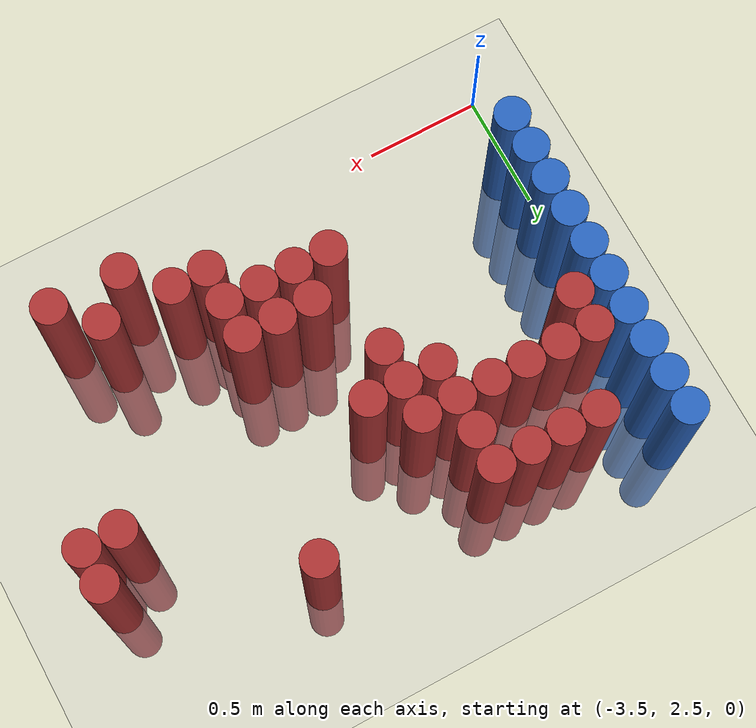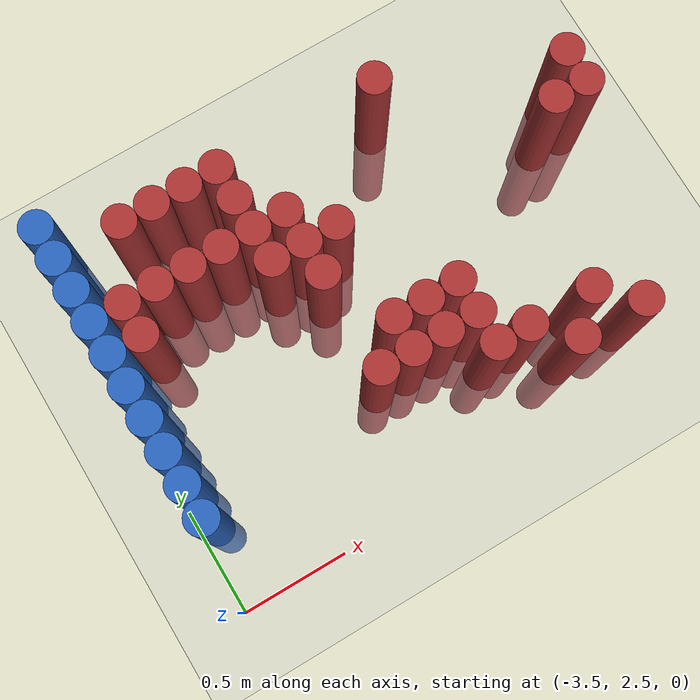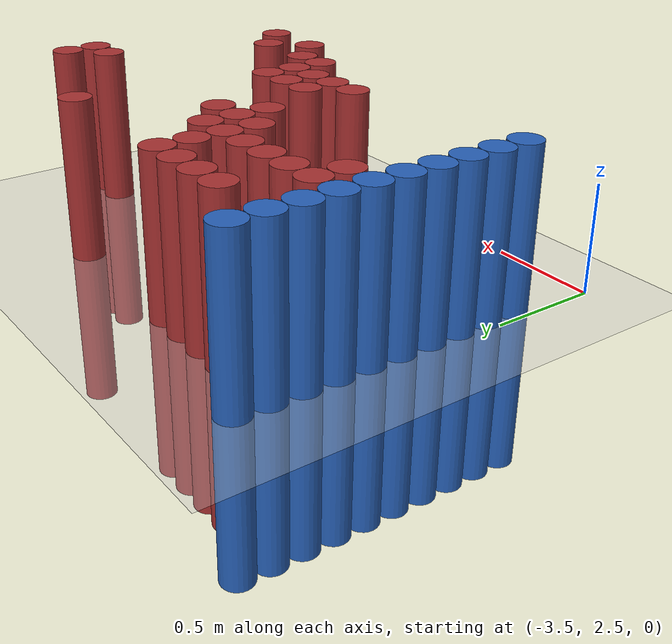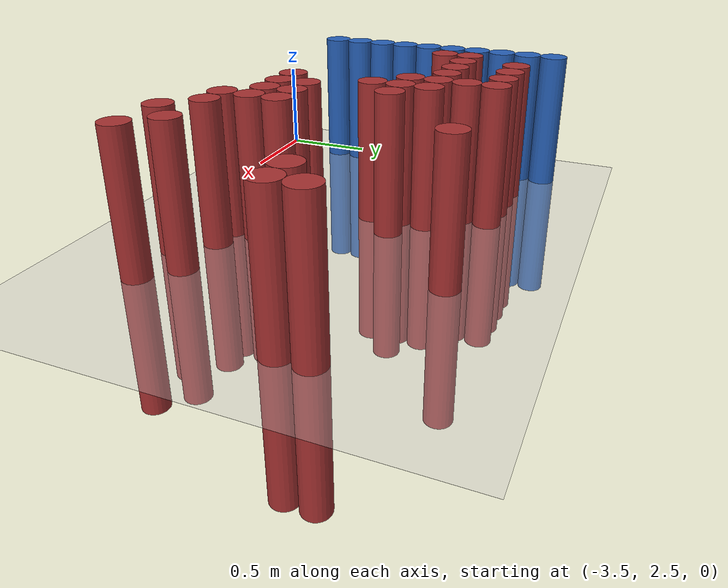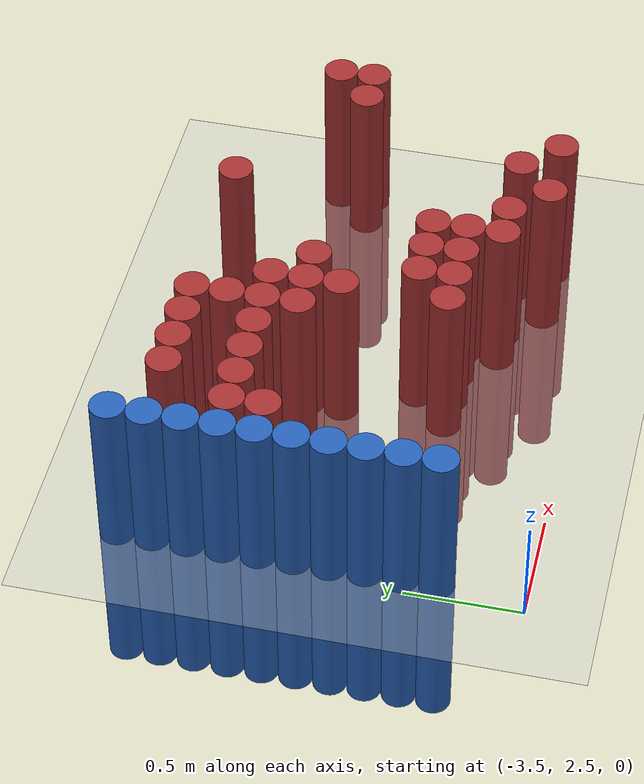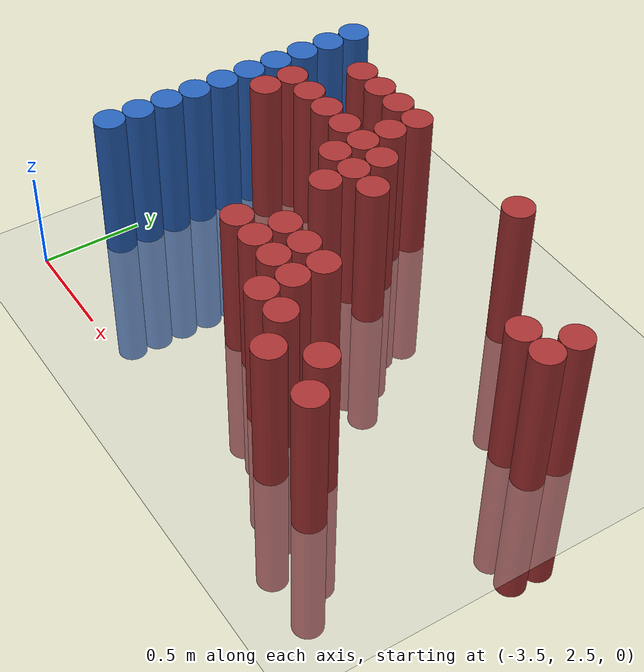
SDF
<sdf version="1.6">
 <world name="default">
  <model name="ground_plane">
   <static>1</static>
   <link name="link">
    <collision name="collision">
     <geometry><plane><normal>0 0 1</normal><size>100 100</size></plane></geometry>
     <surface><friction><ode><mu>100</mu><mu2>50</mu2></ode></friction></surface>
    </collision>
    <visual name="visual">
     <cast_shadows>0</cast_shadows>
     <geometry><plane><normal>0 0 1</normal><size>100 100</size></plane></geometry>
     <material>
      <script><uri>file://media/materials/scripts/gazebo.material</uri><name>Gazebo/Grey</name></script>
     </material>
    </visual>
   </link>
  </model>
  <model name="unit_cylinder_153">
   <static>1</static>
   <pose>-3.425000 2.875000 0.000000 0.000000 0.000000 0.000000</pose>
   <link name="link">
    <inertial>
     <mass>1</mass>
     <inertia><ixx>0.145833</ixx><ixy>0</ixy><ixz>0</ixz><iyy>0.145833</iyy><iyz>0</iyz><izz>0.125</izz></inertia>
    </inertial>
    <collision name="collision">
     <geometry><cylinder><radius>0.075000</radius><length>1.5</length></cylinder></geometry>
    </collision>
    <visual name="visual">
     <geometry><cylinder><radius>0.075000</radius><length>1.5</length></cylinder></geometry>
     <material>
      <ambient>0.152000 0.379000 0.720000 1</ambient>
      <diffuse>0.152000 0.379000 0.720000 1</diffuse>
     </material>
     <material>
      <script><name>Gazebo/Grey</name><uri>file://media/materials/scripts/gazebo.material</uri></script>
     </material>
    </visual>
   </link>
  </model>
  <model name="unit_cylinder_155">
   <static>1</static>
   <pose>-3.425000 3.025000 0.000000 0.000000 0.000000 0.000000</pose>
   <link name="link">
    <inertial>
     <mass>1</mass>
     <inertia><ixx>0.145833</ixx><ixy>0</ixy><ixz>0</ixz><iyy>0.145833</iyy><iyz>0</iyz><izz>0.125</izz></inertia>
    </inertial>
    <collision name="collision">
     <geometry><cylinder><radius>0.075000</radius><length>1.5</length></cylinder></geometry>
    </collision>
    <visual name="visual">
     <geometry><cylinder><radius>0.075000</radius><length>1.5</length></cylinder></geometry>
     <material>
      <ambient>0.152000 0.379000 0.720000 1</ambient>
      <diffuse>0.152000 0.379000 0.720000 1</diffuse>
     </material>
     <material>
      <script><name>Gazebo/Grey</name><uri>file://media/materials/scripts/gazebo.material</uri></script>
     </material>
    </visual>
   </link>
  </model>
  <model name="unit_cylinder_157">
   <static>1</static>
   <pose>-3.425000 3.175000 0.000000 0.000000 0.000000 0.000000</pose>
   <link name="link">
    <inertial>
     <mass>1</mass>
     <inertia><ixx>0.145833</ixx><ixy>0</ixy><ixz>0</ixz><iyy>0.145833</iyy><iyz>0</iyz><izz>0.125</izz></inertia>
    </inertial>
    <collision name="collision">
     <geometry><cylinder><radius>0.075000</radius><length>1.5</length></cylinder></geometry>
    </collision>
    <visual name="visual">
     <geometry><cylinder><radius>0.075000</radius><length>1.5</length></cylinder></geometry>
     <material>
      <ambient>0.152000 0.379000 0.720000 1</ambient>
      <diffuse>0.152000 0.379000 0.720000 1</diffuse>
     </material>
     <material>
      <script><name>Gazebo/Grey</name><uri>file://media/materials/scripts/gazebo.material</uri></script>
     </material>
    </visual>
   </link>
  </model>
  <model name="unit_cylinder_159">
   <static>1</static>
   <pose>-3.425000 3.325000 0.000000 0.000000 0.000000 0.000000</pose>
   <link name="link">
    <inertial>
     <mass>1</mass>
     <inertia><ixx>0.145833</ixx><ixy>0</ixy><ixz>0</ixz><iyy>0.145833</iyy><iyz>0</iyz><izz>0.125</izz></inertia>
    </inertial>
    <collision name="collision">
     <geometry><cylinder><radius>0.075000</radius><length>1.5</length></cylinder></geometry>
    </collision>
    <visual name="visual">
     <geometry><cylinder><radius>0.075000</radius><length>1.5</length></cylinder></geometry>
     <material>
      <ambient>0.152000 0.379000 0.720000 1</ambient>
      <diffuse>0.152000 0.379000 0.720000 1</diffuse>
     </material>
     <material>
      <script><name>Gazebo/Grey</name><uri>file://media/materials/scripts/gazebo.material</uri></script>
     </material>
    </visual>
   </link>
  </model>
  <model name="unit_cylinder_161">
   <static>1</static>
   <pose>-3.425000 3.475000 0.000000 0.000000 0.000000 0.000000</pose>
   <link name="link">
    <inertial>
     <mass>1</mass>
     <inertia><ixx>0.145833</ixx><ixy>0</ixy><ixz>0</ixz><iyy>0.145833</iyy><iyz>0</iyz><izz>0.125</izz></inertia>
    </inertial>
    <collision name="collision">
     <geometry><cylinder><radius>0.075000</radius><length>1.5</length></cylinder></geometry>
    </collision>
    <visual name="visual">
     <geometry><cylinder><radius>0.075000</radius><length>1.5</length></cylinder></geometry>
     <material>
      <ambient>0.152000 0.379000 0.720000 1</ambient>
      <diffuse>0.152000 0.379000 0.720000 1</diffuse>
     </material>
     <material>
      <script><name>Gazebo/Grey</name><uri>file://media/materials/scripts/gazebo.material</uri></script>
     </material>
    </visual>
   </link>
  </model>
  <model name="unit_cylinder_163">
   <static>1</static>
   <pose>-3.425000 3.625000 0.000000 0.000000 0.000000 0.000000</pose>
   <link name="link">
    <inertial>
     <mass>1</mass>
     <inertia><ixx>0.145833</ixx><ixy>0</ixy><ixz>0</ixz><iyy>0.145833</iyy><iyz>0</iyz><izz>0.125</izz></inertia>
    </inertial>
    <collision name="collision">
     <geometry><cylinder><radius>0.075000</radius><length>1.5</length></cylinder></geometry>
    </collision>
    <visual name="visual">
     <geometry><cylinder><radius>0.075000</radius><length>1.5</length></cylinder></geometry>
     <material>
      <ambient>0.152000 0.379000 0.720000 1</ambient>
      <diffuse>0.152000 0.379000 0.720000 1</diffuse>
     </material>
     <material>
      <script><name>Gazebo/Grey</name><uri>file://media/materials/scripts/gazebo.material</uri></script>
     </material>
    </visual>
   </link>
  </model>
  <model name="unit_cylinder_165">
   <static>1</static>
   <pose>-3.425000 3.775000 0.000000 0.000000 0.000000 0.000000</pose>
   <link name="link">
    <inertial>
     <mass>1</mass>
     <inertia><ixx>0.145833</ixx><ixy>0</ixy><ixz>0</ixz><iyy>0.145833</iyy><iyz>0</iyz><izz>0.125</izz></inertia>
    </inertial>
    <collision name="collision">
     <geometry><cylinder><radius>0.075000</radius><length>1.5</length></cylinder></geometry>
    </collision>
    <visual name="visual">
     <geometry><cylinder><radius>0.075000</radius><length>1.5</length></cylinder></geometry>
     <material>
      <ambient>0.152000 0.379000 0.720000 1</ambient>
      <diffuse>0.152000 0.379000 0.720000 1</diffuse>
     </material>
     <material>
      <script><name>Gazebo/Grey</name><uri>file://media/materials/scripts/gazebo.material</uri></script>
     </material>
    </visual>
   </link>
  </model>
  <model name="unit_cylinder_167">
   <static>1</static>
   <pose>-3.425000 3.925000 0.000000 0.000000 0.000000 0.000000</pose>
   <link name="link">
    <inertial>
     <mass>1</mass>
     <inertia><ixx>0.145833</ixx><ixy>0</ixy><ixz>0</ixz><iyy>0.145833</iyy><iyz>0</iyz><izz>0.125</izz></inertia>
    </inertial>
    <collision name="collision">
     <geometry><cylinder><radius>0.075000</radius><length>1.5</length></cylinder></geometry>
    </collision>
    <visual name="visual">
     <geometry><cylinder><radius>0.075000</radius><length>1.5</length></cylinder></geometry>
     <material>
      <ambient>0.152000 0.379000 0.720000 1</ambient>
      <diffuse>0.152000 0.379000 0.720000 1</diffuse>
     </material>
     <material>
      <script><name>Gazebo/Grey</name><uri>file://media/materials/scripts/gazebo.material</uri></script>
     </material>
    </visual>
   </link>
  </model>
  <model name="unit_cylinder_169">
   <static>1</static>
   <pose>-3.425000 4.075000 0.000000 0.000000 0.000000 0.000000</pose>
   <link name="link">
    <inertial>
     <mass>1</mass>
     <inertia><ixx>0.145833</ixx><ixy>0</ixy><ixz>0</ixz><iyy>0.145833</iyy><iyz>0</iyz><izz>0.125</izz></inertia>
    </inertial>
    <collision name="collision">
     <geometry><cylinder><radius>0.075000</radius><length>1.5</length></cylinder></geometry>
    </collision>
    <visual name="visual">
     <geometry><cylinder><radius>0.075000</radius><length>1.5</length></cylinder></geometry>
     <material>
      <ambient>0.152000 0.379000 0.720000 1</ambient>
      <diffuse>0.152000 0.379000 0.720000 1</diffuse>
     </material>
     <material>
      <script><name>Gazebo/Grey</name><uri>file://media/materials/scripts/gazebo.material</uri></script>
     </material>
    </visual>
   </link>
  </model>
  <model name="unit_cylinder_171">
   <static>1</static>
   <pose>-3.425000 4.225000 0.000000 0.000000 0.000000 0.000000</pose>
   <link name="link">
    <inertial>
     <mass>1</mass>
     <inertia><ixx>0.145833</ixx><ixy>0</ixy><ixz>0</ixz><iyy>0.145833</iyy><iyz>0</iyz><izz>0.125</izz></inertia>
    </inertial>
    <collision name="collision">
     <geometry><cylinder><radius>0.075000</radius><length>1.5</length></cylinder></geometry>
    </collision>
    <visual name="visual">
     <geometry><cylinder><radius>0.075000</radius><length>1.5</length></cylinder></geometry>
     <material>
      <ambient>0.152000 0.379000 0.720000 1</ambient>
      <diffuse>0.152000 0.379000 0.720000 1</diffuse>
     </material>
     <material>
      <script><name>Gazebo/Grey</name><uri>file://media/materials/scripts/gazebo.material</uri></script>
     </material>
    </visual>
   </link>
  </model>
  <model name="unit_cylinder_240">
   <static>1</static>
   <pose>-3.425000 2.875000 0.000000 0.000000 0.000000 0.000000</pose>
   <link name="link">
    <inertial>
     <mass>1</mass>
     <inertia><ixx>0.145833</ixx><ixy>0</ixy><ixz>0</ixz><iyy>0.145833</iyy><iyz>0</iyz><izz>0.125</izz></inertia>
    </inertial>
    <collision name="collision">
     <geometry><cylinder><radius>0.075000</radius><length>1.5</length></cylinder></geometry>
    </collision>
    <visual name="visual">
     <geometry><cylinder><radius>0.075000</radius><length>1.5</length></cylinder></geometry>
     <material>
      <ambient>0.152000 0.379000 0.720000 1</ambient>
      <diffuse>0.152000 0.379000 0.720000 1</diffuse>
     </material>
     <material>
      <script><name>Gazebo/Grey</name><uri>file://media/materials/scripts/gazebo.material</uri></script>
     </material>
    </visual>
   </link>
  </model>
  <model name="unit_cylinder_241">
   <static>1</static>
   <pose>-3.425000 3.025000 0.000000 0.000000 0.000000 0.000000</pose>
   <link name="link">
    <inertial>
     <mass>1</mass>
     <inertia><ixx>0.145833</ixx><ixy>0</ixy><ixz>0</ixz><iyy>0.145833</iyy><iyz>0</iyz><izz>0.125</izz></inertia>
    </inertial>
    <collision name="collision">
     <geometry><cylinder><radius>0.075000</radius><length>1.5</length></cylinder></geometry>
    </collision>
    <visual name="visual">
     <geometry><cylinder><radius>0.075000</radius><length>1.5</length></cylinder></geometry>
     <material>
      <ambient>0.152000 0.379000 0.720000 1</ambient>
      <diffuse>0.152000 0.379000 0.720000 1</diffuse>
     </material>
     <material>
      <script><name>Gazebo/Grey</name><uri>file://media/materials/scripts/gazebo.material</uri></script>
     </material>
    </visual>
   </link>
  </model>
  <model name="unit_cylinder_242">
   <static>1</static>
   <pose>-3.425000 3.175000 0.000000 0.000000 0.000000 0.000000</pose>
   <link name="link">
    <inertial>
     <mass>1</mass>
     <inertia><ixx>0.145833</ixx><ixy>0</ixy><ixz>0</ixz><iyy>0.145833</iyy><iyz>0</iyz><izz>0.125</izz></inertia>
    </inertial>
    <collision name="collision">
     <geometry><cylinder><radius>0.075000</radius><length>1.5</length></cylinder></geometry>
    </collision>
    <visual name="visual">
     <geometry><cylinder><radius>0.075000</radius><length>1.5</length></cylinder></geometry>
     <material>
      <ambient>0.152000 0.379000 0.720000 1</ambient>
      <diffuse>0.152000 0.379000 0.720000 1</diffuse>
     </material>
     <material>
      <script><name>Gazebo/Grey</name><uri>file://media/materials/scripts/gazebo.material</uri></script>
     </material>
    </visual>
   </link>
  </model>
  <model name="unit_cylinder_243">
   <static>1</static>
   <pose>-3.425000 3.325000 0.000000 0.000000 0.000000 0.000000</pose>
   <link name="link">
    <inertial>
     <mass>1</mass>
     <inertia><ixx>0.145833</ixx><ixy>0</ixy><ixz>0</ixz><iyy>0.145833</iyy><iyz>0</iyz><izz>0.125</izz></inertia>
    </inertial>
    <collision name="collision">
     <geometry><cylinder><radius>0.075000</radius><length>1.5</length></cylinder></geometry>
    </collision>
    <visual name="visual">
     <geometry><cylinder><radius>0.075000</radius><length>1.5</length></cylinder></geometry>
     <material>
      <ambient>0.152000 0.379000 0.720000 1</ambient>
      <diffuse>0.152000 0.379000 0.720000 1</diffuse>
     </material>
     <material>
      <script><name>Gazebo/Grey</name><uri>file://media/materials/scripts/gazebo.material</uri></script>
     </material>
    </visual>
   </link>
  </model>
  <model name="unit_cylinder_244">
   <static>1</static>
   <pose>-3.425000 3.475000 0.000000 0.000000 0.000000 0.000000</pose>
   <link name="link">
    <inertial>
     <mass>1</mass>
     <inertia><ixx>0.145833</ixx><ixy>0</ixy><ixz>0</ixz><iyy>0.145833</iyy><iyz>0</iyz><izz>0.125</izz></inertia>
    </inertial>
    <collision name="collision">
     <geometry><cylinder><radius>0.075000</radius><length>1.5</length></cylinder></geometry>
    </collision>
    <visual name="visual">
     <geometry><cylinder><radius>0.075000</radius><length>1.5</length></cylinder></geometry>
     <material>
      <ambient>0.152000 0.379000 0.720000 1</ambient>
      <diffuse>0.152000 0.379000 0.720000 1</diffuse>
     </material>
     <material>
      <script><name>Gazebo/Grey</name><uri>file://media/materials/scripts/gazebo.material</uri></script>
     </material>
    </visual>
   </link>
  </model>
  <model name="unit_cylinder_245">
   <static>1</static>
   <pose>-3.425000 3.625000 0.000000 0.000000 0.000000 0.000000</pose>
   <link name="link">
    <inertial>
     <mass>1</mass>
     <inertia><ixx>0.145833</ixx><ixy>0</ixy><ixz>0</ixz><iyy>0.145833</iyy><iyz>0</iyz><izz>0.125</izz></inertia>
    </inertial>
    <collision name="collision">
     <geometry><cylinder><radius>0.075000</radius><length>1.5</length></cylinder></geometry>
    </collision>
    <visual name="visual">
     <geometry><cylinder><radius>0.075000</radius><length>1.5</length></cylinder></geometry>
     <material>
      <ambient>0.152000 0.379000 0.720000 1</ambient>
      <diffuse>0.152000 0.379000 0.720000 1</diffuse>
     </material>
     <material>
      <script><name>Gazebo/Grey</name><uri>file://media/materials/scripts/gazebo.material</uri></script>
     </material>
    </visual>
   </link>
  </model>
  <model name="unit_cylinder_246">
   <static>1</static>
   <pose>-3.425000 3.775000 0.000000 0.000000 0.000000 0.000000</pose>
   <link name="link">
    <inertial>
     <mass>1</mass>
     <inertia><ixx>0.145833</ixx><ixy>0</ixy><ixz>0</ixz><iyy>0.145833</iyy><iyz>0</iyz><izz>0.125</izz></inertia>
    </inertial>
    <collision name="collision">
     <geometry><cylinder><radius>0.075000</radius><length>1.5</length></cylinder></geometry>
    </collision>
    <visual name="visual">
     <geometry><cylinder><radius>0.075000</radius><length>1.5</length></cylinder></geometry>
     <material>
      <ambient>0.152000 0.379000 0.720000 1</ambient>
      <diffuse>0.152000 0.379000 0.720000 1</diffuse>
     </material>
     <material>
      <script><name>Gazebo/Grey</name><uri>file://media/materials/scripts/gazebo.material</uri></script>
     </material>
    </visual>
   </link>
  </model>
  <model name="unit_cylinder_247">
   <static>1</static>
   <pose>-3.425000 3.925000 0.000000 0.000000 0.000000 0.000000</pose>
   <link name="link">
    <inertial>
     <mass>1</mass>
     <inertia><ixx>0.145833</ixx><ixy>0</ixy><ixz>0</ixz><iyy>0.145833</iyy><iyz>0</iyz><izz>0.125</izz></inertia>
    </inertial>
    <collision name="collision">
     <geometry><cylinder><radius>0.075000</radius><length>1.5</length></cylinder></geometry>
    </collision>
    <visual name="visual">
     <geometry><cylinder><radius>0.075000</radius><length>1.5</length></cylinder></geometry>
     <material>
      <ambient>0.152000 0.379000 0.720000 1</ambient>
      <diffuse>0.152000 0.379000 0.720000 1</diffuse>
     </material>
     <material>
      <script><name>Gazebo/Grey</name><uri>file://media/materials/scripts/gazebo.material</uri></script>
     </material>
    </visual>
   </link>
  </model>
  <model name="unit_cylinder_248">
   <static>1</static>
   <pose>-3.425000 4.075000 0.000000 0.000000 0.000000 0.000000</pose>
   <link name="link">
    <inertial>
     <mass>1</mass>
     <inertia><ixx>0.145833</ixx><ixy>0</ixy><ixz>0</ixz><iyy>0.145833</iyy><iyz>0</iyz><izz>0.125</izz></inertia>
    </inertial>
    <collision name="collision">
     <geometry><cylinder><radius>0.075000</radius><length>1.5</length></cylinder></geometry>
    </collision>
    <visual name="visual">
     <geometry><cylinder><radius>0.075000</radius><length>1.5</length></cylinder></geometry>
     <material>
      <ambient>0.152000 0.379000 0.720000 1</ambient>
      <diffuse>0.152000 0.379000 0.720000 1</diffuse>
     </material>
     <material>
      <script><name>Gazebo/Grey</name><uri>file://media/materials/scripts/gazebo.material</uri></script>
     </material>
    </visual>
   </link>
  </model>
  <model name="unit_cylinder_249">
   <static>1</static>
   <pose>-3.425000 4.225000 0.000000 0.000000 0.000000 0.000000</pose>
   <link name="link">
    <inertial>
     <mass>1</mass>
     <inertia><ixx>0.145833</ixx><ixy>0</ixy><ixz>0</ixz><iyy>0.145833</iyy><iyz>0</iyz><izz>0.125</izz></inertia>
    </inertial>
    <collision name="collision">
     <geometry><cylinder><radius>0.075000</radius><length>1.5</length></cylinder></geometry>
    </collision>
    <visual name="visual">
     <geometry><cylinder><radius>0.075000</radius><length>1.5</length></cylinder></geometry>
     <material>
      <ambient>0.152000 0.379000 0.720000 1</ambient>
      <diffuse>0.152000 0.379000 0.720000 1</diffuse>
     </material>
     <material>
      <script><name>Gazebo/Grey</name><uri>file://media/materials/scripts/gazebo.material</uri></script>
     </material>
    </visual>
   </link>
  </model>
  <model name="unit_cylinder_278">
   <static>1</static>
   <pose>-3.275000 3.625000 0.000000 0.000000 0.000000 0.000000</pose>
   <link name="link">
    <inertial>
     <mass>1</mass>
     <inertia><ixx>0.145833</ixx><ixy>0</ixy><ixz>0</ixz><iyy>0.145833</iyy><iyz>0</iyz><izz>0.125</izz></inertia>
    </inertial>
    <collision name="collision">
     <geometry><cylinder><radius>0.075000</radius><length>1.5</length></cylinder></geometry>
    </collision>
    <visual name="visual">
     <geometry><cylinder><radius>0.075000</radius><length>1.5</length></cylinder></geometry>
     <material>
      <ambient>0.648000 0.192000 0.192000 1</ambient>
      <diffuse>0.648000 0.192000 0.192000 1</diffuse>
     </material>
     <material>
      <script><name>Gazebo/Grey</name><uri>file://media/materials/scripts/gazebo.material</uri></script>
     </material>
    </visual>
   </link>
  </model>
  <model name="unit_cylinder_279">
   <static>1</static>
   <pose>-3.275000 3.775000 0.000000 0.000000 0.000000 0.000000</pose>
   <link name="link">
    <inertial>
     <mass>1</mass>
     <inertia><ixx>0.145833</ixx><ixy>0</ixy><ixz>0</ixz><iyy>0.145833</iyy><iyz>0</iyz><izz>0.125</izz></inertia>
    </inertial>
    <collision name="collision">
     <geometry><cylinder><radius>0.075000</radius><length>1.5</length></cylinder></geometry>
    </collision>
    <visual name="visual">
     <geometry><cylinder><radius>0.075000</radius><length>1.5</length></cylinder></geometry>
     <material>
      <ambient>0.648000 0.192000 0.192000 1</ambient>
      <diffuse>0.648000 0.192000 0.192000 1</diffuse>
     </material>
     <material>
      <script><name>Gazebo/Grey</name><uri>file://media/materials/scripts/gazebo.material</uri></script>
     </material>
    </visual>
   </link>
  </model>
  <model name="unit_cylinder_296">
   <static>1</static>
   <pose>-3.125000 3.775000 0.000000 0.000000 0.000000 0.000000</pose>
   <link name="link">
    <inertial>
     <mass>1</mass>
     <inertia><ixx>0.145833</ixx><ixy>0</ixy><ixz>0</ixz><iyy>0.145833</iyy><iyz>0</iyz><izz>0.125</izz></inertia>
    </inertial>
    <collision name="collision">
     <geometry><cylinder><radius>0.075000</radius><length>1.5</length></cylinder></geometry>
    </collision>
    <visual name="visual">
     <geometry><cylinder><radius>0.075000</radius><length>1.5</length></cylinder></geometry>
     <material>
      <ambient>0.648000 0.192000 0.192000 1</ambient>
      <diffuse>0.648000 0.192000 0.192000 1</diffuse>
     </material>
     <material>
      <script><name>Gazebo/Grey</name><uri>file://media/materials/scripts/gazebo.material</uri></script>
     </material>
    </visual>
   </link>
  </model>
  <model name="unit_cylinder_297">
   <static>1</static>
   <pose>-3.125000 4.075000 0.000000 0.000000 0.000000 0.000000</pose>
   <link name="link">
    <inertial>
     <mass>1</mass>
     <inertia><ixx>0.145833</ixx><ixy>0</ixy><ixz>0</ixz><iyy>0.145833</iyy><iyz>0</iyz><izz>0.125</izz></inertia>
    </inertial>
    <collision name="collision">
     <geometry><cylinder><radius>0.075000</radius><length>1.5</length></cylinder></geometry>
    </collision>
    <visual name="visual">
     <geometry><cylinder><radius>0.075000</radius><length>1.5</length></cylinder></geometry>
     <material>
      <ambient>0.648000 0.192000 0.192000 1</ambient>
      <diffuse>0.648000 0.192000 0.192000 1</diffuse>
     </material>
     <material>
      <script><name>Gazebo/Grey</name><uri>file://media/materials/scripts/gazebo.material</uri></script>
     </material>
    </visual>
   </link>
  </model>
  <model name="unit_cylinder_305">
   <static>1</static>
   <pose>-2.975000 3.775000 0.000000 0.000000 0.000000 0.000000</pose>
   <link name="link">
    <inertial>
     <mass>1</mass>
     <inertia><ixx>0.145833</ixx><ixy>0</ixy><ixz>0</ixz><iyy>0.145833</iyy><iyz>0</iyz><izz>0.125</izz></inertia>
    </inertial>
    <collision name="collision">
     <geometry><cylinder><radius>0.075000</radius><length>1.5</length></cylinder></geometry>
    </collision>
    <visual name="visual">
     <geometry><cylinder><radius>0.075000</radius><length>1.5</length></cylinder></geometry>
     <material>
      <ambient>0.648000 0.192000 0.192000 1</ambient>
      <diffuse>0.648000 0.192000 0.192000 1</diffuse>
     </material>
     <material>
      <script><name>Gazebo/Grey</name><uri>file://media/materials/scripts/gazebo.material</uri></script>
     </material>
    </visual>
   </link>
  </model>
  <model name="unit_cylinder_306">
   <static>1</static>
   <pose>-2.975000 4.075000 0.000000 0.000000 0.000000 0.000000</pose>
   <link name="link">
    <inertial>
     <mass>1</mass>
     <inertia><ixx>0.145833</ixx><ixy>0</ixy><ixz>0</ixz><iyy>0.145833</iyy><iyz>0</iyz><izz>0.125</izz></inertia>
    </inertial>
    <collision name="collision">
     <geometry><cylinder><radius>0.075000</radius><length>1.5</length></cylinder></geometry>
    </collision>
    <visual name="visual">
     <geometry><cylinder><radius>0.075000</radius><length>1.5</length></cylinder></geometry>
     <material>
      <ambient>0.648000 0.192000 0.192000 1</ambient>
      <diffuse>0.648000 0.192000 0.192000 1</diffuse>
     </material>
     <material>
      <script><name>Gazebo/Grey</name><uri>file://media/materials/scripts/gazebo.material</uri></script>
     </material>
    </visual>
   </link>
  </model>
  <model name="unit_cylinder_315">
   <static>1</static>
   <pose>-2.825000 3.775000 0.000000 0.000000 0.000000 0.000000</pose>
   <link name="link">
    <inertial>
     <mass>1</mass>
     <inertia><ixx>0.145833</ixx><ixy>0</ixy><ixz>0</ixz><iyy>0.145833</iyy><iyz>0</iyz><izz>0.125</izz></inertia>
    </inertial>
    <collision name="collision">
     <geometry><cylinder><radius>0.075000</radius><length>1.5</length></cylinder></geometry>
    </collision>
    <visual name="visual">
     <geometry><cylinder><radius>0.075000</radius><length>1.5</length></cylinder></geometry>
     <material>
      <ambient>0.648000 0.192000 0.192000 1</ambient>
      <diffuse>0.648000 0.192000 0.192000 1</diffuse>
     </material>
     <material>
      <script><name>Gazebo/Grey</name><uri>file://media/materials/scripts/gazebo.material</uri></script>
     </material>
    </visual>
   </link>
  </model>
  <model name="unit_cylinder_316">
   <static>1</static>
   <pose>-2.825000 4.075000 0.000000 0.000000 0.000000 0.000000</pose>
   <link name="link">
    <inertial>
     <mass>1</mass>
     <inertia><ixx>0.145833</ixx><ixy>0</ixy><ixz>0</ixz><iyy>0.145833</iyy><iyz>0</iyz><izz>0.125</izz></inertia>
    </inertial>
    <collision name="collision">
     <geometry><cylinder><radius>0.075000</radius><length>1.5</length></cylinder></geometry>
    </collision>
    <visual name="visual">
     <geometry><cylinder><radius>0.075000</radius><length>1.5</length></cylinder></geometry>
     <material>
      <ambient>0.648000 0.192000 0.192000 1</ambient>
      <diffuse>0.648000 0.192000 0.192000 1</diffuse>
     </material>
     <material>
      <script><name>Gazebo/Grey</name><uri>file://media/materials/scripts/gazebo.material</uri></script>
     </material>
    </visual>
   </link>
  </model>
  <model name="unit_cylinder_320">
   <static>1</static>
   <pose>-2.675000 3.625000 0.000000 0.000000 0.000000 0.000000</pose>
   <link name="link">
    <inertial>
     <mass>1</mass>
     <inertia><ixx>0.145833</ixx><ixy>0</ixy><ixz>0</ixz><iyy>0.145833</iyy><iyz>0</iyz><izz>0.125</izz></inertia>
    </inertial>
    <collision name="collision">
     <geometry><cylinder><radius>0.075000</radius><length>1.5</length></cylinder></geometry>
    </collision>
    <visual name="visual">
     <geometry><cylinder><radius>0.075000</radius><length>1.5</length></cylinder></geometry>
     <material>
      <ambient>0.648000 0.192000 0.192000 1</ambient>
      <diffuse>0.648000 0.192000 0.192000 1</diffuse>
     </material>
     <material>
      <script><name>Gazebo/Grey</name><uri>file://media/materials/scripts/gazebo.material</uri></script>
     </material>
    </visual>
   </link>
  </model>
  <model name="unit_cylinder_321">
   <static>1</static>
   <pose>-2.675000 3.775000 0.000000 0.000000 0.000000 0.000000</pose>
   <link name="link">
    <inertial>
     <mass>1</mass>
     <inertia><ixx>0.145833</ixx><ixy>0</ixy><ixz>0</ixz><iyy>0.145833</iyy><iyz>0</iyz><izz>0.125</izz></inertia>
    </inertial>
    <collision name="collision">
     <geometry><cylinder><radius>0.075000</radius><length>1.5</length></cylinder></geometry>
    </collision>
    <visual name="visual">
     <geometry><cylinder><radius>0.075000</radius><length>1.5</length></cylinder></geometry>
     <material>
      <ambient>0.648000 0.192000 0.192000 1</ambient>
      <diffuse>0.648000 0.192000 0.192000 1</diffuse>
     </material>
     <material>
      <script><name>Gazebo/Grey</name><uri>file://media/materials/scripts/gazebo.material</uri></script>
     </material>
    </visual>
   </link>
  </model>
  <model name="unit_cylinder_322">
   <static>1</static>
   <pose>-2.675000 3.925000 0.000000 0.000000 0.000000 0.000000</pose>
   <link name="link">
    <inertial>
     <mass>1</mass>
     <inertia><ixx>0.145833</ixx><ixy>0</ixy><ixz>0</ixz><iyy>0.145833</iyy><iyz>0</iyz><izz>0.125</izz></inertia>
    </inertial>
    <collision name="collision">
     <geometry><cylinder><radius>0.075000</radius><length>1.5</length></cylinder></geometry>
    </collision>
    <visual name="visual">
     <geometry><cylinder><radius>0.075000</radius><length>1.5</length></cylinder></geometry>
     <material>
      <ambient>0.648000 0.192000 0.192000 1</ambient>
      <diffuse>0.648000 0.192000 0.192000 1</diffuse>
     </material>
     <material>
      <script><name>Gazebo/Grey</name><uri>file://media/materials/scripts/gazebo.material</uri></script>
     </material>
    </visual>
   </link>
  </model>
  <model name="unit_cylinder_323">
   <static>1</static>
   <pose>-2.675000 4.075000 0.000000 0.000000 0.000000 0.000000</pose>
   <link name="link">
    <inertial>
     <mass>1</mass>
     <inertia><ixx>0.145833</ixx><ixy>0</ixy><ixz>0</ixz><iyy>0.145833</iyy><iyz>0</iyz><izz>0.125</izz></inertia>
    </inertial>
    <collision name="collision">
     <geometry><cylinder><radius>0.075000</radius><length>1.5</length></cylinder></geometry>
    </collision>
    <visual name="visual">
     <geometry><cylinder><radius>0.075000</radius><length>1.5</length></cylinder></geometry>
     <material>
      <ambient>0.648000 0.192000 0.192000 1</ambient>
      <diffuse>0.648000 0.192000 0.192000 1</diffuse>
     </material>
     <material>
      <script><name>Gazebo/Grey</name><uri>file://media/materials/scripts/gazebo.material</uri></script>
     </material>
    </visual>
   </link>
  </model>
  <model name="unit_cylinder_326">
   <static>1</static>
   <pose>-2.525000 3.025000 0.000000 0.000000 0.000000 0.000000</pose>
   <link name="link">
    <inertial>
     <mass>1</mass>
     <inertia><ixx>0.145833</ixx><ixy>0</ixy><ixz>0</ixz><iyy>0.145833</iyy><iyz>0</iyz><izz>0.125</izz></inertia>
    </inertial>
    <collision name="collision">
     <geometry><cylinder><radius>0.075000</radius><length>1.5</length></cylinder></geometry>
    </collision>
    <visual name="visual">
     <geometry><cylinder><radius>0.075000</radius><length>1.5</length></cylinder></geometry>
     <material>
      <ambient>0.648000 0.192000 0.192000 1</ambient>
      <diffuse>0.648000 0.192000 0.192000 1</diffuse>
     </material>
     <material>
      <script><name>Gazebo/Grey</name><uri>file://media/materials/scripts/gazebo.material</uri></script>
     </material>
    </visual>
   </link>
  </model>
  <model name="unit_cylinder_327">
   <static>1</static>
   <pose>-2.525000 3.475000 0.000000 0.000000 0.000000 0.000000</pose>
   <link name="link">
    <inertial>
     <mass>1</mass>
     <inertia><ixx>0.145833</ixx><ixy>0</ixy><ixz>0</ixz><iyy>0.145833</iyy><iyz>0</iyz><izz>0.125</izz></inertia>
    </inertial>
    <collision name="collision">
     <geometry><cylinder><radius>0.075000</radius><length>1.5</length></cylinder></geometry>
    </collision>
    <visual name="visual">
     <geometry><cylinder><radius>0.075000</radius><length>1.5</length></cylinder></geometry>
     <material>
      <ambient>0.648000 0.192000 0.192000 1</ambient>
      <diffuse>0.648000 0.192000 0.192000 1</diffuse>
     </material>
     <material>
      <script><name>Gazebo/Grey</name><uri>file://media/materials/scripts/gazebo.material</uri></script>
     </material>
    </visual>
   </link>
  </model>
  <model name="unit_cylinder_328">
   <static>1</static>
   <pose>-2.525000 3.625000 0.000000 0.000000 0.000000 0.000000</pose>
   <link name="link">
    <inertial>
     <mass>1</mass>
     <inertia><ixx>0.145833</ixx><ixy>0</ixy><ixz>0</ixz><iyy>0.145833</iyy><iyz>0</iyz><izz>0.125</izz></inertia>
    </inertial>
    <collision name="collision">
     <geometry><cylinder><radius>0.075000</radius><length>1.5</length></cylinder></geometry>
    </collision>
    <visual name="visual">
     <geometry><cylinder><radius>0.075000</radius><length>1.5</length></cylinder></geometry>
     <material>
      <ambient>0.648000 0.192000 0.192000 1</ambient>
      <diffuse>0.648000 0.192000 0.192000 1</diffuse>
     </material>
     <material>
      <script><name>Gazebo/Grey</name><uri>file://media/materials/scripts/gazebo.material</uri></script>
     </material>
    </visual>
   </link>
  </model>
  <model name="unit_cylinder_329">
   <static>1</static>
   <pose>-2.525000 3.775000 0.000000 0.000000 0.000000 0.000000</pose>
   <link name="link">
    <inertial>
     <mass>1</mass>
     <inertia><ixx>0.145833</ixx><ixy>0</ixy><ixz>0</ixz><iyy>0.145833</iyy><iyz>0</iyz><izz>0.125</izz></inertia>
    </inertial>
    <collision name="collision">
     <geometry><cylinder><radius>0.075000</radius><length>1.5</length></cylinder></geometry>
    </collision>
    <visual name="visual">
     <geometry><cylinder><radius>0.075000</radius><length>1.5</length></cylinder></geometry>
     <material>
      <ambient>0.648000 0.192000 0.192000 1</ambient>
      <diffuse>0.648000 0.192000 0.192000 1</diffuse>
     </material>
     <material>
      <script><name>Gazebo/Grey</name><uri>file://media/materials/scripts/gazebo.material</uri></script>
     </material>
    </visual>
   </link>
  </model>
  <model name="unit_cylinder_332">
   <static>1</static>
   <pose>-2.375000 3.025000 0.000000 0.000000 0.000000 0.000000</pose>
   <link name="link">
    <inertial>
     <mass>1</mass>
     <inertia><ixx>0.145833</ixx><ixy>0</ixy><ixz>0</ixz><iyy>0.145833</iyy><iyz>0</iyz><izz>0.125</izz></inertia>
    </inertial>
    <collision name="collision">
     <geometry><cylinder><radius>0.075000</radius><length>1.5</length></cylinder></geometry>
    </collision>
    <visual name="visual">
     <geometry><cylinder><radius>0.075000</radius><length>1.5</length></cylinder></geometry>
     <material>
      <ambient>0.648000 0.192000 0.192000 1</ambient>
      <diffuse>0.648000 0.192000 0.192000 1</diffuse>
     </material>
     <material>
      <script><name>Gazebo/Grey</name><uri>file://media/materials/scripts/gazebo.material</uri></script>
     </material>
    </visual>
   </link>
  </model>
  <model name="unit_cylinder_333">
   <static>1</static>
   <pose>-2.375000 3.175000 0.000000 0.000000 0.000000 0.000000</pose>
   <link name="link">
    <inertial>
     <mass>1</mass>
     <inertia><ixx>0.145833</ixx><ixy>0</ixy><ixz>0</ixz><iyy>0.145833</iyy><iyz>0</iyz><izz>0.125</izz></inertia>
    </inertial>
    <collision name="collision">
     <geometry><cylinder><radius>0.075000</radius><length>1.5</length></cylinder></geometry>
    </collision>
    <visual name="visual">
     <geometry><cylinder><radius>0.075000</radius><length>1.5</length></cylinder></geometry>
     <material>
      <ambient>0.648000 0.192000 0.192000 1</ambient>
      <diffuse>0.648000 0.192000 0.192000 1</diffuse>
     </material>
     <material>
      <script><name>Gazebo/Grey</name><uri>file://media/materials/scripts/gazebo.material</uri></script>
     </material>
    </visual>
   </link>
  </model>
  <model name="unit_cylinder_334">
   <static>1</static>
   <pose>-2.375000 3.625000 0.000000 0.000000 0.000000 0.000000</pose>
   <link name="link">
    <inertial>
     <mass>1</mass>
     <inertia><ixx>0.145833</ixx><ixy>0</ixy><ixz>0</ixz><iyy>0.145833</iyy><iyz>0</iyz><izz>0.125</izz></inertia>
    </inertial>
    <collision name="collision">
     <geometry><cylinder><radius>0.075000</radius><length>1.5</length></cylinder></geometry>
    </collision>
    <visual name="visual">
     <geometry><cylinder><radius>0.075000</radius><length>1.5</length></cylinder></geometry>
     <material>
      <ambient>0.648000 0.192000 0.192000 1</ambient>
      <diffuse>0.648000 0.192000 0.192000 1</diffuse>
     </material>
     <material>
      <script><name>Gazebo/Grey</name><uri>file://media/materials/scripts/gazebo.material</uri></script>
     </material>
    </visual>
   </link>
  </model>
  <model name="unit_cylinder_339">
   <static>1</static>
   <pose>-2.225000 3.025000 0.000000 0.000000 0.000000 0.000000</pose>
   <link name="link">
    <inertial>
     <mass>1</mass>
     <inertia><ixx>0.145833</ixx><ixy>0</ixy><ixz>0</ixz><iyy>0.145833</iyy><iyz>0</iyz><izz>0.125</izz></inertia>
    </inertial>
    <collision name="collision">
     <geometry><cylinder><radius>0.075000</radius><length>1.5</length></cylinder></geometry>
    </collision>
    <visual name="visual">
     <geometry><cylinder><radius>0.075000</radius><length>1.5</length></cylinder></geometry>
     <material>
      <ambient>0.648000 0.192000 0.192000 1</ambient>
      <diffuse>0.648000 0.192000 0.192000 1</diffuse>
     </material>
     <material>
      <script><name>Gazebo/Grey</name><uri>file://media/materials/scripts/gazebo.material</uri></script>
     </material>
    </visual>
   </link>
  </model>
  <model name="unit_cylinder_340">
   <static>1</static>
   <pose>-2.225000 3.175000 0.000000 0.000000 0.000000 0.000000</pose>
   <link name="link">
    <inertial>
     <mass>1</mass>
     <inertia><ixx>0.145833</ixx><ixy>0</ixy><ixz>0</ixz><iyy>0.145833</iyy><iyz>0</iyz><izz>0.125</izz></inertia>
    </inertial>
    <collision name="collision">
     <geometry><cylinder><radius>0.075000</radius><length>1.5</length></cylinder></geometry>
    </collision>
    <visual name="visual">
     <geometry><cylinder><radius>0.075000</radius><length>1.5</length></cylinder></geometry>
     <material>
      <ambient>0.648000 0.192000 0.192000 1</ambient>
      <diffuse>0.648000 0.192000 0.192000 1</diffuse>
     </material>
     <material>
      <script><name>Gazebo/Grey</name><uri>file://media/materials/scripts/gazebo.material</uri></script>
     </material>
    </visual>
   </link>
  </model>
  <model name="unit_cylinder_345">
   <static>1</static>
   <pose>-2.075000 2.875000 0.000000 0.000000 0.000000 0.000000</pose>
   <link name="link">
    <inertial>
     <mass>1</mass>
     <inertia><ixx>0.145833</ixx><ixy>0</ixy><ixz>0</ixz><iyy>0.145833</iyy><iyz>0</iyz><izz>0.125</izz></inertia>
    </inertial>
    <collision name="collision">
     <geometry><cylinder><radius>0.075000</radius><length>1.5</length></cylinder></geometry>
    </collision>
    <visual name="visual">
     <geometry><cylinder><radius>0.075000</radius><length>1.5</length></cylinder></geometry>
     <material>
      <ambient>0.648000 0.192000 0.192000 1</ambient>
      <diffuse>0.648000 0.192000 0.192000 1</diffuse>
     </material>
     <material>
      <script><name>Gazebo/Grey</name><uri>file://media/materials/scripts/gazebo.material</uri></script>
     </material>
    </visual>
   </link>
  </model>
  <model name="unit_cylinder_346">
   <static>1</static>
   <pose>-2.075000 3.025000 0.000000 0.000000 0.000000 0.000000</pose>
   <link name="link">
    <inertial>
     <mass>1</mass>
     <inertia><ixx>0.145833</ixx><ixy>0</ixy><ixz>0</ixz><iyy>0.145833</iyy><iyz>0</iyz><izz>0.125</izz></inertia>
    </inertial>
    <collision name="collision">
     <geometry><cylinder><radius>0.075000</radius><length>1.5</length></cylinder></geometry>
    </collision>
    <visual name="visual">
     <geometry><cylinder><radius>0.075000</radius><length>1.5</length></cylinder></geometry>
     <material>
      <ambient>0.648000 0.192000 0.192000 1</ambient>
      <diffuse>0.648000 0.192000 0.192000 1</diffuse>
     </material>
     <material>
      <script><name>Gazebo/Grey</name><uri>file://media/materials/scripts/gazebo.material</uri></script>
     </material>
    </visual>
   </link>
  </model>
  <model name="unit_cylinder_347">
   <static>1</static>
   <pose>-2.075000 3.175000 0.000000 0.000000 0.000000 0.000000</pose>
   <link name="link">
    <inertial>
     <mass>1</mass>
     <inertia><ixx>0.145833</ixx><ixy>0</ixy><ixz>0</ixz><iyy>0.145833</iyy><iyz>0</iyz><izz>0.125</izz></inertia>
    </inertial>
    <collision name="collision">
     <geometry><cylinder><radius>0.075000</radius><length>1.5</length></cylinder></geometry>
    </collision>
    <visual name="visual">
     <geometry><cylinder><radius>0.075000</radius><length>1.5</length></cylinder></geometry>
     <material>
      <ambient>0.648000 0.192000 0.192000 1</ambient>
      <diffuse>0.648000 0.192000 0.192000 1</diffuse>
     </material>
     <material>
      <script><name>Gazebo/Grey</name><uri>file://media/materials/scripts/gazebo.material</uri></script>
     </material>
    </visual>
   </link>
  </model>
  <model name="unit_cylinder_354">
   <static>1</static>
   <pose>-1.925000 2.875000 0.000000 0.000000 0.000000 0.000000</pose>
   <link name="link">
    <inertial>
     <mass>1</mass>
     <inertia><ixx>0.145833</ixx><ixy>0</ixy><ixz>0</ixz><iyy>0.145833</iyy><iyz>0</iyz><izz>0.125</izz></inertia>
    </inertial>
    <collision name="collision">
     <geometry><cylinder><radius>0.075000</radius><length>1.5</length></cylinder></geometry>
    </collision>
    <visual name="visual">
     <geometry><cylinder><radius>0.075000</radius><length>1.5</length></cylinder></geometry>
     <material>
      <ambient>0.648000 0.192000 0.192000 1</ambient>
      <diffuse>0.648000 0.192000 0.192000 1</diffuse>
     </material>
     <material>
      <script><name>Gazebo/Grey</name><uri>file://media/materials/scripts/gazebo.material</uri></script>
     </material>
    </visual>
   </link>
  </model>
  <model name="unit_cylinder_355">
   <static>1</static>
   <pose>-1.925000 4.075000 0.000000 0.000000 0.000000 0.000000</pose>
   <link name="link">
    <inertial>
     <mass>1</mass>
     <inertia><ixx>0.145833</ixx><ixy>0</ixy><ixz>0</ixz><iyy>0.145833</iyy><iyz>0</iyz><izz>0.125</izz></inertia>
    </inertial>
    <collision name="collision">
     <geometry><cylinder><radius>0.075000</radius><length>1.5</length></cylinder></geometry>
    </collision>
    <visual name="visual">
     <geometry><cylinder><radius>0.075000</radius><length>1.5</length></cylinder></geometry>
     <material>
      <ambient>0.648000 0.192000 0.192000 1</ambient>
      <diffuse>0.648000 0.192000 0.192000 1</diffuse>
     </material>
     <material>
      <script><name>Gazebo/Grey</name><uri>file://media/materials/scripts/gazebo.material</uri></script>
     </material>
    </visual>
   </link>
  </model>
  <model name="unit_cylinder_362">
   <static>1</static>
   <pose>-1.775000 2.725000 0.000000 0.000000 0.000000 0.000000</pose>
   <link name="link">
    <inertial>
     <mass>1</mass>
     <inertia><ixx>0.145833</ixx><ixy>0</ixy><ixz>0</ixz><iyy>0.145833</iyy><iyz>0</iyz><izz>0.125</izz></inertia>
    </inertial>
    <collision name="collision">
     <geometry><cylinder><radius>0.075000</radius><length>1.5</length></cylinder></geometry>
    </collision>
    <visual name="visual">
     <geometry><cylinder><radius>0.075000</radius><length>1.5</length></cylinder></geometry>
     <material>
      <ambient>0.648000 0.192000 0.192000 1</ambient>
      <diffuse>0.648000 0.192000 0.192000 1</diffuse>
     </material>
     <material>
      <script><name>Gazebo/Grey</name><uri>file://media/materials/scripts/gazebo.material</uri></script>
     </material>
    </visual>
   </link>
  </model>
  <model name="unit_cylinder_372">
   <static>1</static>
   <pose>-1.625000 2.875000 0.000000 0.000000 0.000000 0.000000</pose>
   <link name="link">
    <inertial>
     <mass>1</mass>
     <inertia><ixx>0.145833</ixx><ixy>0</ixy><ixz>0</ixz><iyy>0.145833</iyy><iyz>0</iyz><izz>0.125</izz></inertia>
    </inertial>
    <collision name="collision">
     <geometry><cylinder><radius>0.075000</radius><length>1.5</length></cylinder></geometry>
    </collision>
    <visual name="visual">
     <geometry><cylinder><radius>0.075000</radius><length>1.5</length></cylinder></geometry>
     <material>
      <ambient>0.648000 0.192000 0.192000 1</ambient>
      <diffuse>0.648000 0.192000 0.192000 1</diffuse>
     </material>
     <material>
      <script><name>Gazebo/Grey</name><uri>file://media/materials/scripts/gazebo.material</uri></script>
     </material>
    </visual>
   </link>
  </model>
  <model name="unit_cylinder_381">
   <static>1</static>
   <pose>-1.475000 2.725000 0.000000 0.000000 0.000000 0.000000</pose>
   <link name="link">
    <inertial>
     <mass>1</mass>
     <inertia><ixx>0.145833</ixx><ixy>0</ixy><ixz>0</ixz><iyy>0.145833</iyy><iyz>0</iyz><izz>0.125</izz></inertia>
    </inertial>
    <collision name="collision">
     <geometry><cylinder><radius>0.075000</radius><length>1.5</length></cylinder></geometry>
    </collision>
    <visual name="visual">
     <geometry><cylinder><radius>0.075000</radius><length>1.5</length></cylinder></geometry>
     <material>
      <ambient>0.648000 0.192000 0.192000 1</ambient>
      <diffuse>0.648000 0.192000 0.192000 1</diffuse>
     </material>
     <material>
      <script><name>Gazebo/Grey</name><uri>file://media/materials/scripts/gazebo.material</uri></script>
     </material>
    </visual>
   </link>
  </model>
  <model name="unit_cylinder_387">
   <static>1</static>
   <pose>-1.325000 3.625000 0.000000 0.000000 0.000000 0.000000</pose>
   <link name="link">
    <inertial>
     <mass>1</mass>
     <inertia><ixx>0.145833</ixx><ixy>0</ixy><ixz>0</ixz><iyy>0.145833</iyy><iyz>0</iyz><izz>0.125</izz></inertia>
    </inertial>
    <collision name="collision">
     <geometry><cylinder><radius>0.075000</radius><length>1.5</length></cylinder></geometry>
    </collision>
    <visual name="visual">
     <geometry><cylinder><radius>0.075000</radius><length>1.5</length></cylinder></geometry>
     <material>
      <ambient>0.648000 0.192000 0.192000 1</ambient>
      <diffuse>0.648000 0.192000 0.192000 1</diffuse>
     </material>
     <material>
      <script><name>Gazebo/Grey</name><uri>file://media/materials/scripts/gazebo.material</uri></script>
     </material>
    </visual>
   </link>
  </model>
  <model name="unit_cylinder_401">
   <static>1</static>
   <pose>-1.175000 3.625000 0.000000 0.000000 0.000000 0.000000</pose>
   <link name="link">
    <inertial>
     <mass>1</mass>
     <inertia><ixx>0.145833</ixx><ixy>0</ixy><ixz>0</ixz><iyy>0.145833</iyy><iyz>0</iyz><izz>0.125</izz></inertia>
    </inertial>
    <collision name="collision">
     <geometry><cylinder><radius>0.075000</radius><length>1.5</length></cylinder></geometry>
    </collision>
    <visual name="visual">
     <geometry><cylinder><radius>0.075000</radius><length>1.5</length></cylinder></geometry>
     <material>
      <ambient>0.648000 0.192000 0.192000 1</ambient>
      <diffuse>0.648000 0.192000 0.192000 1</diffuse>
     </material>
     <material>
      <script><name>Gazebo/Grey</name><uri>file://media/materials/scripts/gazebo.material</uri></script>
     </material>
    </visual>
   </link>
  </model>
  <model name="unit_cylinder_402">
   <static>1</static>
   <pose>-1.175000 3.775000 0.000000 0.000000 0.000000 0.000000</pose>
   <link name="link">
    <inertial>
     <mass>1</mass>
     <inertia><ixx>0.145833</ixx><ixy>0</ixy><ixz>0</ixz><iyy>0.145833</iyy><iyz>0</iyz><izz>0.125</izz></inertia>
    </inertial>
    <collision name="collision">
     <geometry><cylinder><radius>0.075000</radius><length>1.5</length></cylinder></geometry>
    </collision>
    <visual name="visual">
     <geometry><cylinder><radius>0.075000</radius><length>1.5</length></cylinder></geometry>
     <material>
      <ambient>0.648000 0.192000 0.192000 1</ambient>
      <diffuse>0.648000 0.192000 0.192000 1</diffuse>
     </material>
     <material>
      <script><name>Gazebo/Grey</name><uri>file://media/materials/scripts/gazebo.material</uri></script>
     </material>
    </visual>
   </link>
  </model>
 </world>
</sdf>
